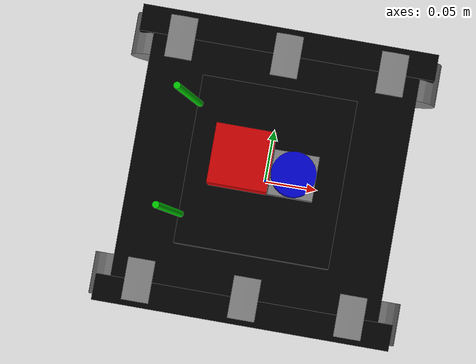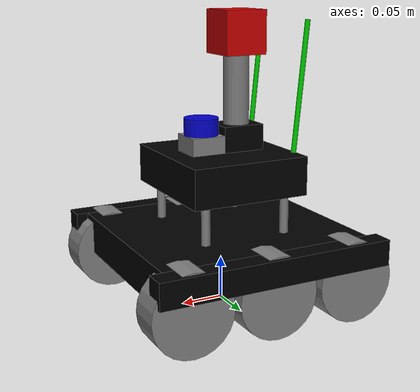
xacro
<?xml version="1.0"?>
<robot xmlns:xacro="http://www.ros.org/wiki/xacro">

    <xacro:include filename="inertial_macros.xacro"/>

    <material name="black"><color rgba="0 0 0 1"/></material>
    <material name="grey"><color rgba="0.5 0.5 0.5 1"/></material>
    <material name="blue"><color rgba="0 0 0.8 1"/></material>
    <material name="red"><color rgba="0.8 0 0 1"/></material>
    <material name="green"><color rgba="0 0.8 0 1"/></material>

    <link name="base_link"></link>

    <joint name="chassis_joint" type="fixed">
        <parent link="base_link"/><child link="chassis"/>
        <origin xyz="-0.126 0 0.04687"/>
    </joint>
    <link name="chassis">
        <visual><origin xyz="0.126 0 0.0225"/><geometry><box size="0.2524 0.2304 0.045"/></geometry><material name="black"/></visual>
        <collision><origin xyz="0.126 0 0.0225"/><geometry><box size="0.2524 0.2304 0.045"/></geometry></collision>
        <xacro:inertial_box mass="2.5" x="0.2524" y="0.2304" z="0.045"><origin xyz="0.126 0 0.0225"/></xacro:inertial_box>
    </link>

    <xacro:macro name="fender" params="prefix y_reflect">
        <joint name="${prefix}_fender_joint" type="fixed">
            <parent link="chassis"/>
            <child link="${prefix}_fender"/>
            <origin xyz="0.126 ${y_reflect * 0.1152} 0.045"/>
        </joint>
        <link name="${prefix}_fender">
            <visual>
                <origin xyz="0 ${y_reflect * 0.0125} -0.015"/><geometry><box size="0.28 0.025 0.03"/></geometry>
                <material name="black"/>
            </visual>
        </link>
    </xacro:macro>
    <xacro:fender prefix="left" y_reflect="1"/><xacro:fender prefix="right" y_reflect="-1"/>

    <xacro:macro name="pillar" params="prefix x_off y_off">
        <joint name="${prefix}_pillar_joint" type="fixed"><parent link="chassis"/><child link="${prefix}_pillar"/><origin xyz="${0.126 + x_off} ${y_off} 0.045"/></joint>
        <link name="${prefix}_pillar">
            <visual><origin xyz="0 0 0.0225"/><geometry><cylinder radius="0.005" length="0.045"/></geometry><material name="grey"/></visual>
        </link>
    </xacro:macro>
    <xacro:pillar prefix="fl" x_off="0.05" y_off="0.06"/><xacro:pillar prefix="fr" x_off="0.05" y_off="-0.06"/>
    <xacro:pillar prefix="rl" x_off="-0.05" y_off="0.06"/><xacro:pillar prefix="rr" x_off="-0.05" y_off="-0.06"/>

    <joint name="upper_platform_joint" type="fixed"><parent link="chassis"/><child link="upper_platform"/><origin xyz="0.126 0 0.090"/></joint>
    <link name="upper_platform">
        <visual><origin xyz="0 0 0.0225"/><geometry><box size="0.14 0.152 0.045"/></geometry><material name="black"/></visual>
        <collision><origin xyz="0 0 0.0225"/><geometry><box size="0.14 0.152 0.045"/></geometry></collision>
        <xacro:inertial_box mass="0.5" x="0.14" y="0.152" z="0.045"><origin xyz="0 0 0.0225"/></xacro:inertial_box>
    </link>

    <xacro:macro name="wheel" params="prefix x_off y_off">
        <joint name="${prefix}_wheel_joint" type="continuous"><parent link="base_link"/><child link="${prefix}_wheel"/><origin xyz="${x_off} ${y_off} 0.04687" rpy="-${pi/2} 0 0"/><axis xyz="0 0 1"/></joint>
        <link name="${prefix}_wheel">
            <visual><geometry><cylinder radius="0.04687" length="0.04"/></geometry><material name="grey"/></visual>
            <collision><geometry><cylinder radius="0.04687" length="0.04"/></geometry></collision>
            <xacro:inertial_cylinder mass="0.2" length="0.04" radius="0.04687"><origin xyz="0 0 0"/></xacro:inertial_cylinder>
        </link>
    </xacro:macro>
    <xacro:wheel prefix="front_left" x_off="0.10" y_off="0.115"/><xacro:wheel prefix="mid_left" x_off="0.0" y_off="0.115"/><xacro:wheel prefix="back_left" x_off="-0.10" y_off="0.115"/>
    <xacro:wheel prefix="front_right" x_off="0.10" y_off="-0.115"/><xacro:wheel prefix="mid_right" x_off="0.0" y_off="-0.115"/><xacro:wheel prefix="back_right" x_off="-0.10" y_off="-0.115"/>

    <joint name="laser_base_joint" type="fixed"><parent link="upper_platform"/><child link="laser_base"/><origin xyz="0.025 0 0.045"/></joint>
    <link name="laser_base">
        <visual><origin xyz="0 0 0.01"/><geometry><box size="0.04 0.04 0.02"/></geometry><material name="grey"/></visual>
    </link>
    <joint name="laser_joint" type="fixed"><parent link="laser_base"/><child link="laser_frame"/><origin xyz="0 0 0.02"/></joint>
    <link name="laser_frame">
        <visual><origin xyz="0 0 0.01"/><geometry><cylinder radius="0.02" length="0.02"/></geometry><material name="blue"/></visual>
        <collision><origin xyz="0 0 0.01"/><geometry><cylinder radius="0.02" length="0.02"/></geometry></collision>
    </link>

    <joint name="camera_stand_joint" type="fixed"><parent link="upper_platform"/><child link="camera_stand"/><origin xyz="-0.02 0 0.045"/></joint>
    <link name="camera_stand">
        <visual>
            <origin xyz="0 0 0.015"/> <geometry><box size="0.05 0.04 0.03"/></geometry>
            <material name="black"/>
        </visual>
    </link>

    <joint name="camera_pan_joint" type="continuous"><parent link="camera_stand"/><child link="camera_pan_link"/><origin xyz="0 0 0.03"/><axis xyz="0 0 1"/></joint>
    <link name="camera_pan_link">
            <visual>
                <origin xyz="0 0 0.04"/> <geometry><cylinder radius="0.015" length="0.08"/></geometry>
                <material name="grey"/>
            </visual>
            <collision>
                <origin xyz="0 0 0.04"/> <geometry><cylinder radius="0.015" length="0.08"/></geometry>
            </collision>
            <xacro:inertial_cylinder mass="0.05" length="0.08" radius="0.015">
                <origin xyz="0 0 0.04"/>
            </xacro:inertial_cylinder>
        </link>

    <joint name="camera_tilt_joint" type="revolute">
        <parent link="camera_pan_link"/>
        <child link="camera_head"/>
        <origin xyz="0 0 0.08"/> <axis xyz="0 1 0"/>
        <limit lower="-1.57" upper="1.57" effort="10" velocity="1.0"/>
    </joint>
    <link name="camera_head">
        <visual>
            <origin xyz="0 0 0.025"/> <geometry><box size="0.05 0.05 0.05"/></geometry>
            <material name="red"/>
        </visual>
        <collision>
            <origin xyz="0 0 0.025"/>
            <geometry><box size="0.05 0.05 0.05"/></geometry>
        </collision>
        <xacro:inertial_box mass="0.1" x="0.05" y="0.05" z="0.05"><origin xyz="0 0 0.025"/></xacro:inertial_box>
    </link>

    <xacro:macro name="antenna" params="prefix y_off">
        <joint name="${prefix}_antenna_joint" type="fixed"><parent link="upper_platform"/><child link="${prefix}_antenna"/><origin xyz="-0.068 ${y_off} 0.045" rpy="0 -0.1 0"/></joint>
        <link name="${prefix}_antenna">
            <visual><origin xyz="0 0 0.075"/><geometry><cylinder radius="0.003" length="0.15"/></geometry><material name="green"/></visual>
        </link>
    </xacro:macro>
    <xacro:antenna prefix="left" y_off="0.05"/><xacro:antenna prefix="right" y_off="-0.05"/>

</robot>
